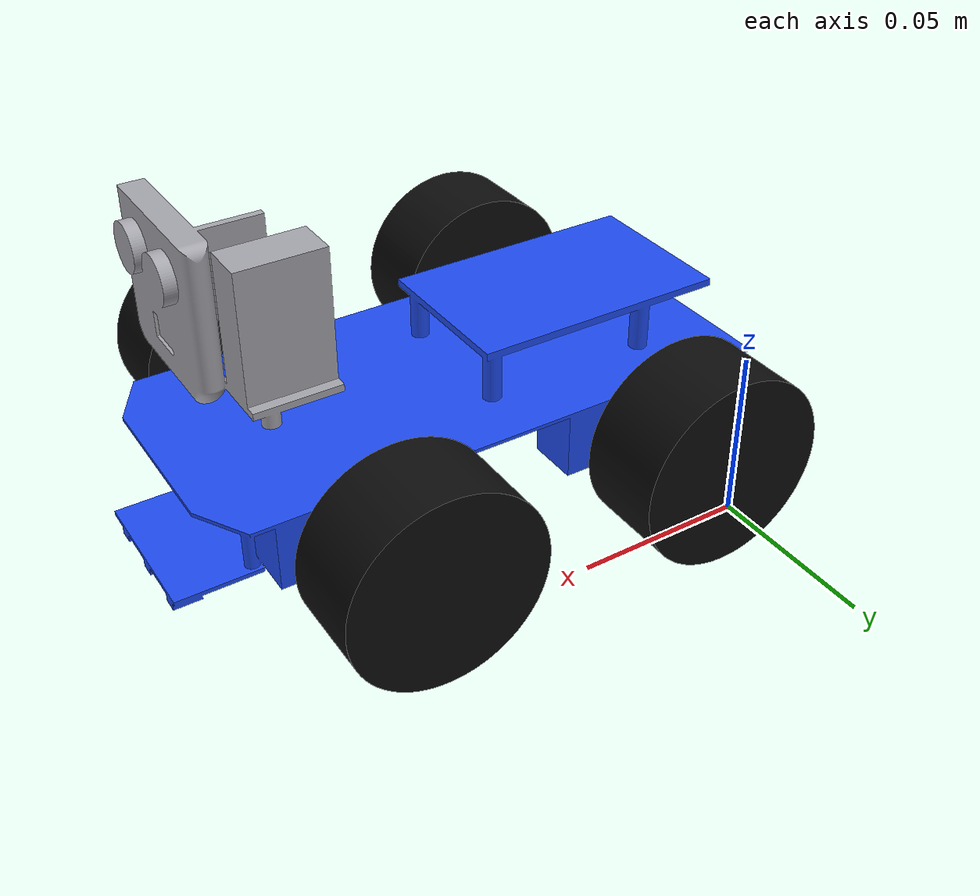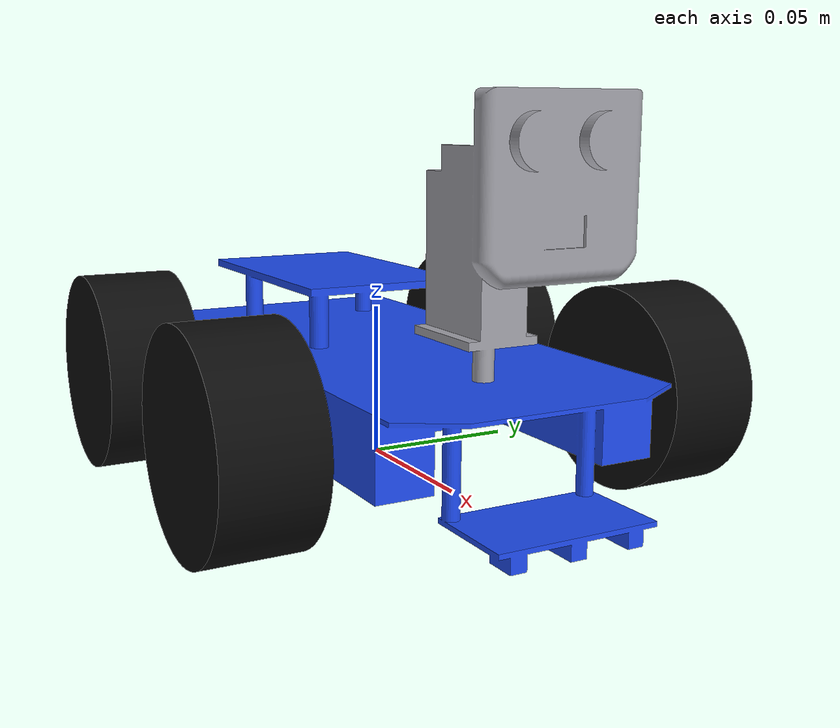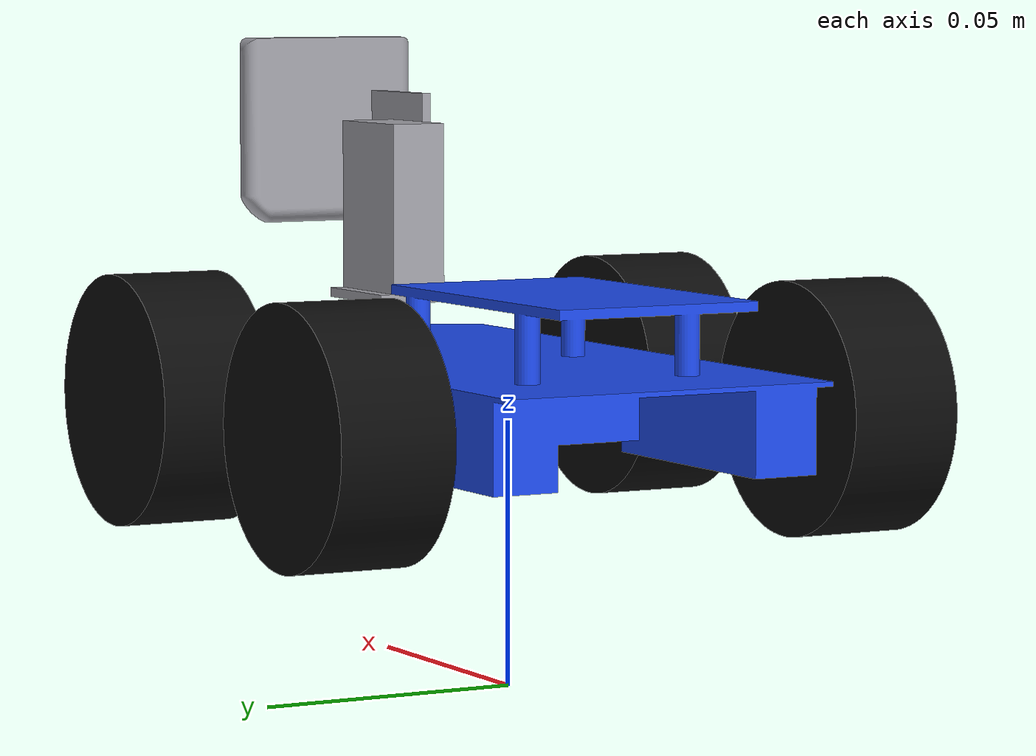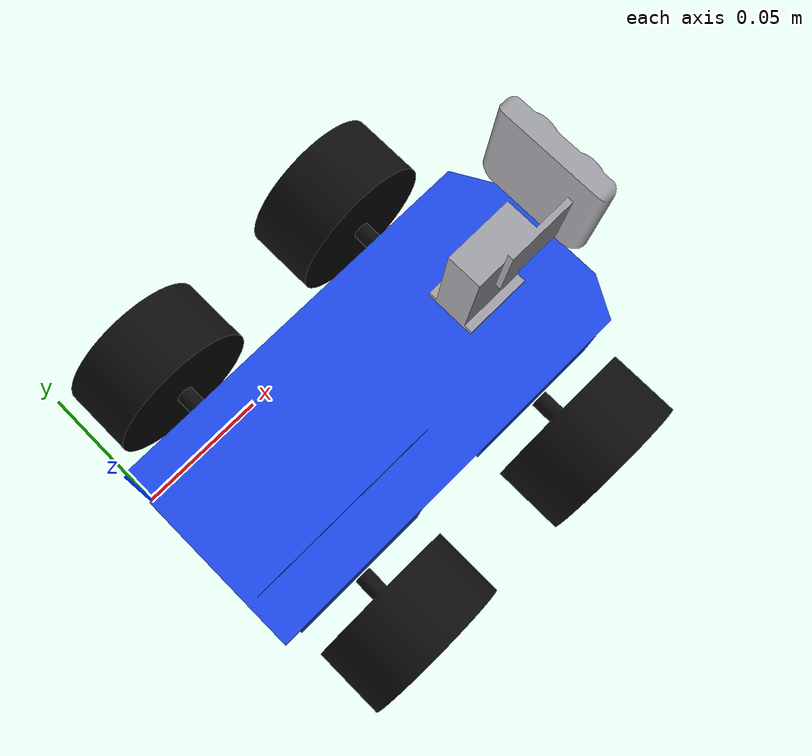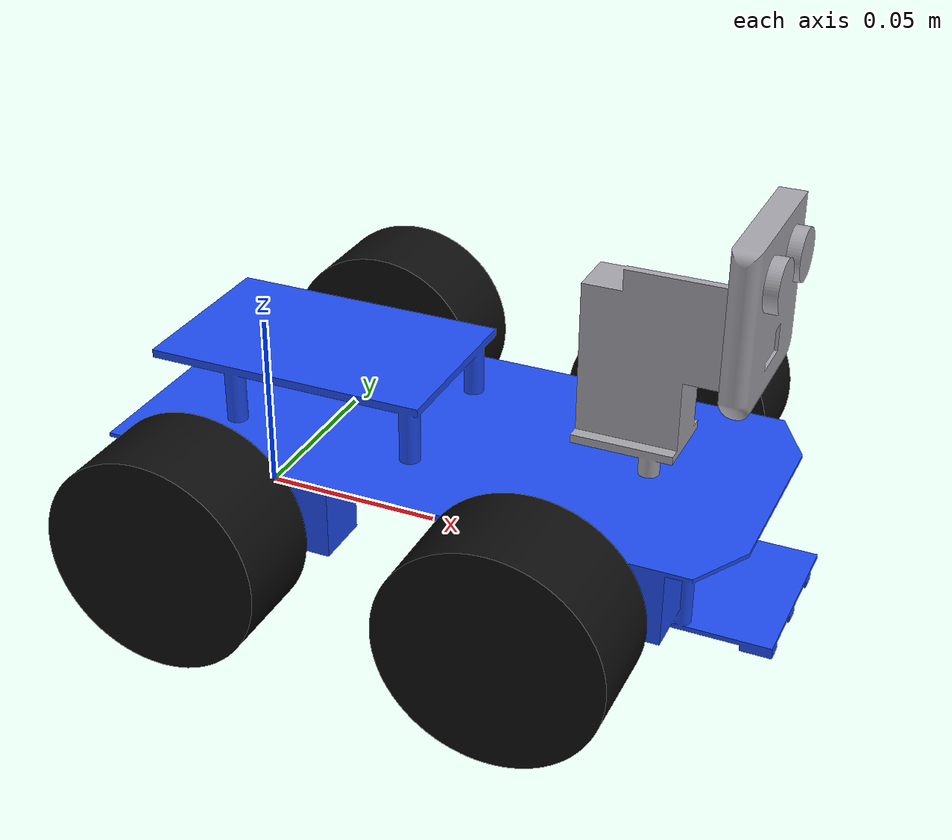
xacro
<?xml version="1.0"?>

<robot name="mecanum_robot" xmlns:xacro="http://www.ros.org/wiki/xacro">

  <!-- Ajusta estas propiedades si necesitas afinar la pose inicial del modelo -->
  <xacro:property name="mesh_scale" value="0.001 0.001 0.001"/>
  <xacro:property name="base_link_z" value="0.04"/>
  <xacro:property name="wheel_radius" value="0.026"/>
  <xacro:property name="wheel_width" value="0.024"/>
  <xacro:property name="wheel_x" value="0.055"/>
  <xacro:property name="wheel_y" value="0.085000"/>
  <xacro:property name="wheel_z" value="0.008786"/>
  <xacro:property name="head_x" value="0.0"/>
  <xacro:property name="head_y" value="0.0"/>
  <xacro:property name="head_z" value="0.0"/>
  <!-- Punto real de pivote del servo de pan, calculado desde la geometria de cabeza.stl
       (centro X/Y del mesh, base del vastago del servo en Z) -->
  <xacro:property name="head_pivot_x" value="0.1278"/>
  <xacro:property name="head_pivot_y" value="-0.0322"/>
  <xacro:property name="head_pivot_z" value="0.014"/>
  <xacro:property name="base_length" value="0.30"/>
  <xacro:property name="base_width" value="0.20"/>
  <xacro:property name="base_height" value="0.08"/>
  <xacro:property name="head_length" value="0.12"/>
  <xacro:property name="head_width" value="0.10"/>
  <xacro:property name="head_height" value="0.08"/>
  <xacro:property name="ultrasonic_x" value="0.15"/>
  <xacro:property name="ultrasonic_y" value="-0.035"/>
  <xacro:property name="ultrasonic_z" value="0.06"/>
  <xacro:property name="ultrasonic_length" value="0.018"/>
  <xacro:property name="ultrasonic_width" value="0.012"/>
  <xacro:property name="ultrasonic_height" value="0.008"/>
  <xacro:property name="camera_x" value="0.15"/>
  <xacro:property name="camera_y" value="0.0"/>
  <xacro:property name="camera_z" value="0.04"/>
  <xacro:property name="line_sensor_x" value="0.13"/>
  <xacro:property name="line_sensor_y" value="0.04"/>
  <xacro:property name="line_sensor_z" value="-0.035"/>

  <xacro:macro name="wheel_link" params="link_name joint_name mesh_file joint_x joint_y joint_z visual_rpy">
    <link name="${link_name}">
      <visual>
        <origin xyz="0 0 0" rpy="${visual_rpy}"/>
        <geometry>
          <mesh filename="${mesh_file}" scale="${mesh_scale}"/>
        </geometry>
        <material name="wheel_black">
          <color rgba="0.05 0.05 0.05 1.0"/>
        </material>
      </visual>
      <collision>
        <origin xyz="0 0 0" rpy="1.57079632679 0 0"/>
        <geometry>
          <cylinder radius="${wheel_radius}" length="${wheel_width}"/>
        </geometry>
      </collision>
      <inertial>
        <origin xyz="0 0 0" rpy="0 0 0"/>
        <mass value="0.25"/>
        <inertia ixx="0.00018" ixy="0.0" ixz="0.0" iyy="0.00020" iyz="0.0" izz="0.00018"/>
      </inertial>
    </link>

    <joint name="${joint_name}" type="continuous">
      <parent link="base_link"/>
      <child link="${link_name}"/>
      <axis xyz="0 1 0"/>
      <origin xyz="${joint_x} ${joint_y} ${joint_z}" rpy="0 0 0"/>
    </joint>
  </xacro:macro>

  <link name="base_footprint"/>

  <link name="base_link">
    <visual>
      <origin xyz="0 0 0" rpy="0 0 0"/>
      <geometry>
        <mesh filename="package://mecanum_robot/meshes/chasis.stl" scale="${mesh_scale}"/>
      </geometry>
      <material name="chassis_blue">
        <color rgba="0.12 0.30 0.95 1.0"/>
      </material>
    </visual>

    <collision>
      <origin xyz="0 0 0" rpy="0 0 0"/>
      <geometry>
        <box size="${base_length} ${base_width} ${base_height}"/>
      </geometry>
    </collision>

    <inertial>
      <origin xyz="0 0 0" rpy="0 0 0"/>
      <mass value="3.0"/>
      <inertia ixx="0.0137" ixy="0.0" ixz="0.0" iyy="0.0272" iyz="0.0" izz="0.0377"/>
    </inertial>
  </link>

  <joint name="base_footprint_joint" type="fixed">
    <parent link="base_footprint"/>
    <child link="base_link"/>
    <origin xyz="0 0 ${base_link_z}" rpy="0 0 0"/>
  </joint>

  <xacro:wheel_link
    link_name="front_left_wheel_link"
    joint_name="front_left_wheel_joint"
    mesh_file="package://mecanum_robot/meshes/Rueda.stl"
    joint_x="0.111638"
    joint_y="0"
    joint_z="0.005114"
    visual_rpy="0 0 3.14159265359"/>

  <xacro:wheel_link
    link_name="front_right_wheel_link"
    joint_name="front_right_wheel_joint"
    mesh_file="package://mecanum_robot/meshes/Rueda.stl"
    joint_x="0.111638"
    joint_y="-0.073"
    joint_z="0.005114"
    visual_rpy="0 0 0"/>

  <xacro:wheel_link
    link_name="rear_left_wheel_link"
    joint_name="rear_left_wheel_joint"
    mesh_file="package://mecanum_robot/meshes/Rueda.stl"
    joint_x="0.031638"
    joint_y="0"
    joint_z="0.005114"
    visual_rpy="0 0 3.14159265359"/>

  <xacro:wheel_link
    link_name="rear_right_wheel_link"
    joint_name="rear_right_wheel_joint"
    mesh_file="package://mecanum_robot/meshes/Rueda.stl"
    joint_x="0.031638"
    joint_y="-0.073"
    joint_z="0.005114"
    visual_rpy="0 0 0"/>

  <link name="head_link">
    <visual>
      <origin xyz="${-head_pivot_x} ${-head_pivot_y} ${-head_pivot_z}" rpy="0 0 0"/>
      <geometry>
        <mesh filename="package://mecanum_robot/meshes/cabeza.stl" scale="${mesh_scale}"/>
      </geometry>
      <material name="head_gray">
        <color rgba="0.65 0.65 0.68 1.0"/>
      </material>
    </visual>

    <collision>
      <origin xyz="${-head_pivot_x} ${-head_pivot_y} ${-head_pivot_z}" rpy="0 0 0"/>
      <geometry>
        <box size="${head_length} ${head_width} ${head_height}"/>
      </geometry>
    </collision>

    <inertial>
      <origin xyz="${-head_pivot_x} ${-head_pivot_y} ${-head_pivot_z}" rpy="0 0 0"/>
      <mass value="0.6"/>
      <inertia ixx="0.00082" ixy="0.0" ixz="0.0" iyy="0.00136" iyz="0.0" izz="0.00155"/>
    </inertial>
  </link>

  <joint name="head_joint" type="revolute">
    <parent link="base_link"/>
    <child link="head_link"/>
    <origin xyz="${head_x + head_pivot_x} ${head_y + head_pivot_y} ${head_z + head_pivot_z}" rpy="0 0 0"/>
    <axis xyz="0 0 1"/>
    <limit lower="-1.5708" upper="1.5708" effort="1.0" velocity="1.0"/>
  </joint>

  <link name="ultrasonic_link">
    <collision>
      <origin xyz="0 0 0" rpy="0 0 0"/>
      <geometry>
        <box size="${ultrasonic_length} ${ultrasonic_width} ${ultrasonic_height}"/>
      </geometry>
    </collision>

    <inertial>
      <origin xyz="0 0 0" rpy="0 0 0"/>
      <mass value="0.02"/>
      <inertia ixx="1.0e-6" ixy="0.0" ixz="0.0" iyy="1.2e-6" iyz="0.0" izz="0.8e-6"/>
    </inertial>
  </link>

  <joint name="ultrasonic_joint" type="fixed">
    <parent link="head_link"/>
    <child link="ultrasonic_link"/>
    <origin xyz="${ultrasonic_x - head_pivot_x} ${ultrasonic_y - head_pivot_y} ${ultrasonic_z - head_pivot_z}" rpy="0 0 0"/>
  </joint>

  <link name="camera_link">
    <inertial>
      <origin xyz="0 0 0" rpy="0 0 0"/>
      <mass value="0.01"/>
      <inertia ixx="1.0e-6" ixy="0.0" ixz="0.0" iyy="1.0e-6" iyz="0.0" izz="1.0e-6"/>
    </inertial>
  </link>

  <joint name="camera_joint" type="fixed">
    <parent link="base_link"/>
    <child link="camera_link"/>
    <origin xyz="${camera_x} ${camera_y} ${camera_z}" rpy="0 0 0"/>
  </joint>

  <xacro:macro name="line_sensor_link" params="link_name joint_y">
    <link name="${link_name}">
      <inertial>
        <origin xyz="0 0 0" rpy="0 0 0"/>
        <mass value="0.001"/>
        <inertia ixx="1.0e-7" ixy="0.0" ixz="0.0" iyy="1.0e-7" iyz="0.0" izz="1.0e-7"/>
      </inertial>
    </link>
    <joint name="${link_name}_joint" type="fixed">
      <parent link="base_link"/>
      <child link="${link_name}"/>
      <origin xyz="${line_sensor_x} ${joint_y} ${line_sensor_z}" rpy="0 0 0"/>
    </joint>
  </xacro:macro>

  <xacro:line_sensor_link link_name="line_left_link" joint_y="${line_sensor_y}"/>
  <xacro:line_sensor_link link_name="line_center_link" joint_y="0"/>
  <xacro:line_sensor_link link_name="line_right_link" joint_y="${-line_sensor_y}"/>

  <gazebo reference="ultrasonic_link">
    <sensor name="ultrasonic_sensor" type="ray">
      <pose>0 0 0 0 0 0</pose>
      <visualize>false</visualize>
      <update_rate>10</update_rate>
      <ray>
        <scan>
          <horizontal>
            <samples>5</samples>
            <resolution>1</resolution>
            <min_angle>-0.13</min_angle>
            <max_angle>0.13</max_angle>
          </horizontal>
        </scan>
        <range>
          <min>0.02</min>
          <max>3.0</max>
          <resolution>0.01</resolution>
        </range>
      </ray>
      <plugin name="ultrasonic_range_plugin" filename="libgazebo_ros_ray_sensor.so">
        <ros>
          <remapping>~/out:=ultrasonic_range</remapping>
        </ros>
        <output_type>sensor_msgs/Range</output_type>
        <radiation_type>ultrasound</radiation_type>
        <frame_name>ultrasonic_link</frame_name>
      </plugin>
    </sensor>
  </gazebo>

  <!-- Camara simulada: mismos parametros que usb_camera_node.py (320x240,
       10 Hz), publicando en /camera/image_raw con frame_id camera_link
       (el mismo que declara el nodo real por defecto). -->
  <gazebo reference="camera_link">
    <sensor name="camera_sensor" type="camera">
      <update_rate>10</update_rate>
      <camera>
        <horizontal_fov>1.047</horizontal_fov>
        <image>
          <width>320</width>
          <height>240</height>
          <format>R8G8B8</format>
        </image>
        <clip>
          <near>0.05</near>
          <far>20</far>
        </clip>
      </camera>
      <plugin name="camera_plugin" filename="libgazebo_ros_camera.so">
        <camera_name>camera</camera_name>
        <frame_name>camera_link</frame_name>
      </plugin>
    </sensor>
  </gazebo>

  <xacro:macro name="line_ray_sensor" params="link_name topic_suffix">
    <gazebo reference="${link_name}">
      <sensor name="${link_name}_sensor" type="ray">
        <pose>0 0 0 0 1.5708 0</pose>
        <visualize>false</visualize>
        <update_rate>20</update_rate>
        <ray>
          <scan>
            <horizontal>
              <samples>1</samples>
              <resolution>1</resolution>
              <min_angle>0</min_angle>
              <max_angle>0</max_angle>
            </horizontal>
          </scan>
          <range>
            <min>0.001</min>
            <max>0.1</max>
            <resolution>0.001</resolution>
          </range>
        </ray>
        <plugin name="${link_name}_plugin" filename="libgazebo_ros_ray_sensor.so">
          <ros>
            <remapping>~/out:=line_raw/${topic_suffix}</remapping>
          </ros>
          <output_type>sensor_msgs/LaserScan</output_type>
          <frame_name>${link_name}</frame_name>
        </plugin>
      </sensor>
    </gazebo>
  </xacro:macro>

  <xacro:line_ray_sensor link_name="line_left_link" topic_suffix="left"/>
  <xacro:line_ray_sensor link_name="line_center_link" topic_suffix="center"/>
  <xacro:line_ray_sensor link_name="line_right_link" topic_suffix="right"/>

  <gazebo>
    <plugin name="head_joint_trajectory" filename="libgazebo_ros_joint_pose_trajectory.so">
      <update_rate>20</update_rate>
    </plugin>
  </gazebo>

  <gazebo>
    <plugin name="planar_move" filename="libgazebo_ros_planar_move.so">
      <ros>
        <remapping>cmd_vel:=cmd_vel</remapping>
        <remapping>odom:=gazebo_odom</remapping>
      </ros>
      <update_rate>100</update_rate>
      <publish_rate>10</publish_rate>
      <publish_odom>true</publish_odom>
      <publish_odom_tf>true</publish_odom_tf>
      <odometry_frame>gazebo_odom</odometry_frame>
      <robot_base_frame>base_footprint</robot_base_frame>
      <covariance_x>0.0001</covariance_x>
      <covariance_y>0.0001</covariance_y>
      <covariance_yaw>0.01</covariance_yaw>
    </plugin>
  </gazebo>

</robot>
